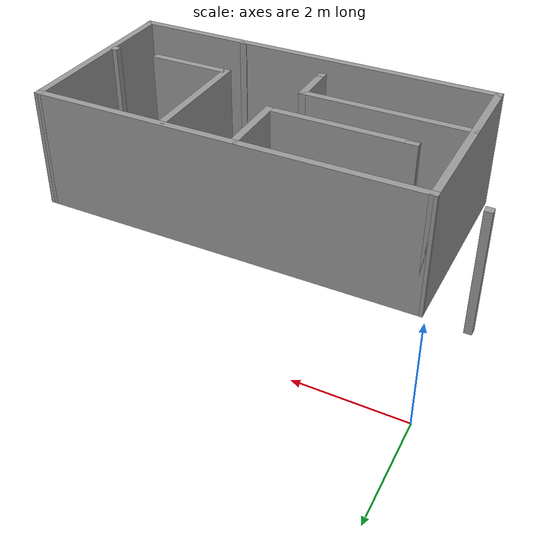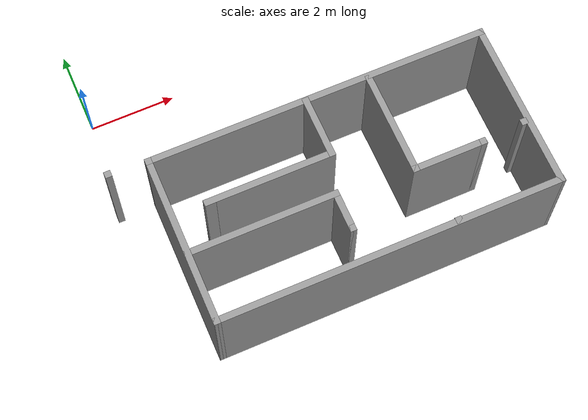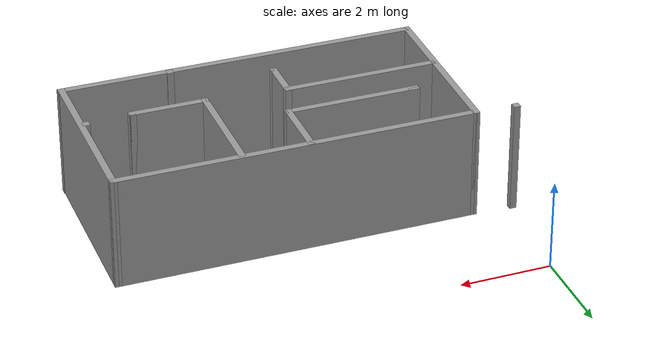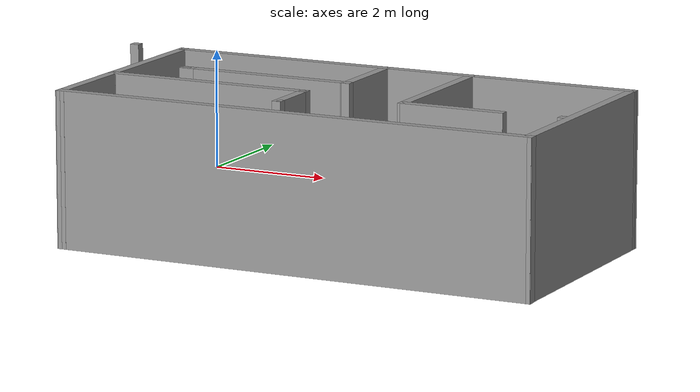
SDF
<?xml version='1.0'?>
<sdf version='1.7'>
  <model name='room2'>
    <pose>4.17819 -3.19268 0 0 -0 0</pose>
    <link name='Wall_11'>
      <collision name='Wall_11_Collision'>
        <geometry>
          <box>
            <size>0.15 0.15 2.5</size>
          </box>
        </geometry>
        <pose>0 0 1.25 0 -0 0</pose>
      </collision>
      <visual name='Wall_11_Visual'>
        <pose>0 0 1.25 0 -0 0</pose>
        <geometry>
          <box>
            <size>0.15 0.15 2.5</size>
          </box>
        </geometry>
        <material>
          <script>
            <uri>file://media/materials/scripts/gazebo.material</uri>
            <name>Gazebo/Grey</name>
          </script>
          <ambient>0 0 0 1</ambient>
        </material>
        <meta>
          <layer>0</layer>
        </meta>
      </visual>
      <pose>1.97181 -3.09732 0 0 -0 0</pose>
    </link>
    <link name='Wall_12'>
      <collision name='Wall_12_Collision'>
        <geometry>
          <box>
            <size>2.5 0.15 2.5</size>
          </box>
        </geometry>
        <pose>0 0 1.25 0 -0 0</pose>
      </collision>
      <visual name='Wall_12_Visual'>
        <pose>0 0 1.25 0 -0 0</pose>
        <geometry>
          <box>
            <size>2.5 0.15 2.5</size>
          </box>
        </geometry>
        <material>
          <script>
            <uri>file://media/materials/scripts/gazebo.material</uri>
            <name>Gazebo/Grey</name>
          </script>
          <ambient>1 1 1 1</ambient>
        </material>
        <meta>
          <layer>0</layer>
        </meta>
      </visual>
      <pose>1.64181 -0.502318 0 0 -0 -1.5708</pose>
    </link>
    <link name='Wall_14'>
      <collision name='Wall_14_Collision'>
        <geometry>
          <box>
            <size>0.15 0.15 2.5</size>
          </box>
        </geometry>
        <pose>0 0 1.25 0 -0 0</pose>
      </collision>
      <visual name='Wall_14_Visual'>
        <pose>0 0 1.25 0 -0 0</pose>
        <geometry>
          <box>
            <size>0.15 0.15 2.5</size>
          </box>
        </geometry>
        <material>
          <script>
            <uri>file://media/materials/scripts/gazebo.material</uri>
            <name>Gazebo/Grey</name>
          </script>
          <ambient>0 0 0 1</ambient>
        </material>
        <meta>
          <layer>0</layer>
        </meta>
      </visual>
      <pose>4.25181 -1.60732 0 0 -0 0</pose>
    </link>
    <link name='Wall_15'>
      <collision name='Wall_15_Collision'>
        <geometry>
          <box>
            <size>0.15 0.15 2.5</size>
          </box>
        </geometry>
        <pose>0 0 1.25 0 -0 0</pose>
      </collision>
      <visual name='Wall_15_Visual'>
        <pose>0 0 1.25 0 -0 0</pose>
        <geometry>
          <box>
            <size>0.15 0.15 2.5</size>
          </box>
        </geometry>
        <material>
          <script>
            <uri>file://media/materials/scripts/gazebo.material</uri>
            <name>Gazebo/Grey</name>
          </script>
          <ambient>0 0 0 1</ambient>
        </material>
        <meta>
          <layer>0</layer>
        </meta>
      </visual>
      <pose>4.25181 -1.60732 0 0 -0 0</pose>
    </link>
    <link name='Wall_16'>
      <collision name='Wall_16_Collision'>
        <geometry>
          <box>
            <size>1.75 0.15 2.5</size>
          </box>
        </geometry>
        <pose>0 0 1.25 0 -0 0</pose>
      </collision>
      <visual name='Wall_16_Visual'>
        <pose>0 0 1.25 0 -0 0</pose>
        <geometry>
          <box>
            <size>1.75 0.15 2.5</size>
          </box>
        </geometry>
        <material>
          <script>
            <uri>file://media/materials/scripts/gazebo.material</uri>
            <name>Gazebo/Grey</name>
          </script>
          <ambient>1 1 1 1</ambient>
        </material>
        <meta>
          <layer>0</layer>
        </meta>
      </visual>
      <pose>2.44181 -1.67732 0 0 -0 0</pose>
    </link>
    <link name='Wall_17'>
      <collision name='Wall_17_Collision'>
        <geometry>
          <box>
            <size>0.15 0.15 2.5</size>
          </box>
        </geometry>
        <pose>0 0 1.25 0 -0 0</pose>
      </collision>
      <visual name='Wall_17_Visual'>
        <pose>0 0 1.25 0 -0 0</pose>
        <geometry>
          <box>
            <size>0.15 0.15 2.5</size>
          </box>
        </geometry>
        <material>
          <script>
            <uri>file://media/materials/scripts/gazebo.material</uri>
            <name>Gazebo/Grey</name>
          </script>
          <ambient>0 0 0 1</ambient>
        </material>
        <meta>
          <layer>0</layer>
        </meta>
      </visual>
      <pose>3.24181 -1.67732 0 0 -0 0</pose>
    </link>
    <link name='Wall_18'>
      <collision name='Wall_18_Collision'>
        <geometry>
          <box>
            <size>1.5 0.15 2.5</size>
          </box>
        </geometry>
        <pose>0 0 1.25 0 -0 0</pose>
      </collision>
      <visual name='Wall_18_Visual'>
        <pose>0 0 1.25 0 -0 0</pose>
        <geometry>
          <box>
            <size>1.5 0.15 2.5</size>
          </box>
        </geometry>
        <material>
          <script>
            <uri>file://media/materials/scripts/gazebo.material</uri>
            <name>Gazebo/Grey</name>
          </script>
          <ambient>1 1 1 1</ambient>
        </material>
        <meta>
          <layer>0</layer>
        </meta>
      </visual>
      <pose>0.161806 0.037682 0 0 -0 -1.5708</pose>
    </link>
    <link name='Wall_19'>
      <collision name='Wall_19_Collision'>
        <geometry>
          <box>
            <size>3 0.15 2.5</size>
          </box>
        </geometry>
        <pose>0 0 1.25 0 -0 0</pose>
      </collision>
      <visual name='Wall_19_Visual'>
        <pose>0 0 1.25 0 -0 0</pose>
        <geometry>
          <box>
            <size>3 0.15 2.5</size>
          </box>
        </geometry>
        <material>
          <script>
            <uri>file://media/materials/scripts/gazebo.material</uri>
            <name>Gazebo/Grey</name>
          </script>
          <ambient>1 1 1 1</ambient>
        </material>
        <meta>
          <layer>0</layer>
        </meta>
      </visual>
      <pose>-1.26319 -0.637318 0 0 -0 3.14159</pose>
    </link>
    <link name='Wall_20'>
      <collision name='Wall_20_Collision'>
        <geometry>
          <box>
            <size>0.25 0.15 2.5</size>
          </box>
        </geometry>
        <pose>0 0 1.25 0 -0 0</pose>
      </collision>
      <visual name='Wall_20_Visual'>
        <pose>0 0 1.25 0 -0 0</pose>
        <geometry>
          <box>
            <size>0.25 0.15 2.5</size>
          </box>
        </geometry>
        <material>
          <script>
            <uri>file://media/materials/scripts/gazebo.material</uri>
            <name>Gazebo/Grey</name>
          </script>
          <ambient>0 0 0 1</ambient>
        </material>
        <meta>
          <layer>0</layer>
        </meta>
      </visual>
      <pose>-2.63819 -0.637318 0 0 -0 0</pose>
    </link>
    <link name='Wall_22'>
      <collision name='Wall_22_Collision'>
        <geometry>
          <box>
            <size>0.15 0.15 2.5</size>
          </box>
        </geometry>
        <pose>0 0 1.25 0 -0 0</pose>
      </collision>
      <visual name='Wall_22_Visual'>
        <pose>0 0 1.25 0 -0 0</pose>
        <geometry>
          <box>
            <size>0.15 0.15 2.5</size>
          </box>
        </geometry>
        <material>
          <script>
            <uri>file://media/materials/scripts/gazebo.material</uri>
            <name>Gazebo/Grey</name>
          </script>
          <ambient>0 0 0 1</ambient>
        </material>
        <meta>
          <layer>0</layer>
        </meta>
      </visual>
      <pose>-0.138194 -1.52732 0 0 -0 0</pose>
    </link>
    <link name='Wall_23'>
      <collision name='Wall_23_Collision'>
        <geometry>
          <box>
            <size>3.5 0.15 2.5</size>
          </box>
        </geometry>
        <pose>0 0 1.25 0 -0 0</pose>
      </collision>
      <visual name='Wall_23_Visual'>
        <pose>0 0 1.25 0 -0 0</pose>
        <geometry>
          <box>
            <size>3.5 0.15 2.5</size>
          </box>
        </geometry>
        <material>
          <script>
            <uri>file://media/materials/scripts/gazebo.material</uri>
            <name>Gazebo/Grey</name>
          </script>
          <ambient>1 1 1 1</ambient>
        </material>
        <meta>
          <layer>0</layer>
        </meta>
      </visual>
      <pose>-1.81319 -1.52732 0 0 -0 3.14159</pose>
    </link>
    <link name='Wall_24'>
      <collision name='Wall_24_Collision'>
        <geometry>
          <box>
            <size>0.15 0.15 2.5</size>
          </box>
        </geometry>
        <pose>0 0 1.25 0 -0 0</pose>
      </collision>
      <visual name='Wall_24_Visual'>
        <pose>0 0 1.25 0 -0 0</pose>
        <geometry>
          <box>
            <size>0.15 0.15 2.5</size>
          </box>
        </geometry>
        <material>
          <script>
            <uri>file://media/materials/scripts/gazebo.material</uri>
            <name>Gazebo/Grey</name>
          </script>
          <ambient>0 0 0 1</ambient>
        </material>
        <meta>
          <layer>0</layer>
        </meta>
      </visual>
      <pose>-3.48819 -1.52732 0 0 -0 0</pose>
    </link>
    <link name='Wall_25'>
      <collision name='Wall_25_Collision'>
        <geometry>
          <box>
            <size>1 0.15 2.5</size>
          </box>
        </geometry>
        <pose>0 0 1.25 0 -0 0</pose>
      </collision>
      <visual name='Wall_25_Visual'>
        <pose>0 0 1.25 0 -0 0</pose>
        <geometry>
          <box>
            <size>1 0.15 2.5</size>
          </box>
        </geometry>
        <material>
          <script>
            <uri>file://media/materials/scripts/gazebo.material</uri>
            <name>Gazebo/Grey</name>
          </script>
          <ambient>1 1 1 1</ambient>
        </material>
        <meta>
          <layer>0</layer>
        </meta>
      </visual>
      <pose>-0.138194 -1.95232 0 0 -0 -1.5708</pose>
    </link>
    <link name='Wall_26'>
      <collision name='Wall_26_Collision'>
        <geometry>
          <box>
            <size>0.15 0.15 2.5</size>
          </box>
        </geometry>
        <pose>0 0 1.25 0 -0 0</pose>
      </collision>
      <visual name='Wall_26_Visual'>
        <pose>0 0 1.25 0 -0 0</pose>
        <geometry>
          <box>
            <size>0.15 0.15 2.5</size>
          </box>
        </geometry>
        <material>
          <script>
            <uri>file://media/materials/scripts/gazebo.material</uri>
            <name>Gazebo/Grey</name>
          </script>
          <ambient>0 0 0 1</ambient>
        </material>
        <meta>
          <layer>0</layer>
        </meta>
      </visual>
      <pose>-0.138194 -2.37732 0 0 -0 0</pose>
    </link>
    <link name='Wall_3'>
      <collision name='Wall_3_Collision'>
        <geometry>
          <box>
            <size>0.15 0.15 2.5</size>
          </box>
        </geometry>
        <pose>0 0 1.25 0 -0 0</pose>
      </collision>
      <visual name='Wall_3_Visual'>
        <pose>0 0 1.25 0 -0 0</pose>
        <geometry>
          <box>
            <size>0.15 0.15 2.5</size>
          </box>
        </geometry>
        <material>
          <script>
            <uri>file://media/materials/scripts/gazebo.material</uri>
            <name>Gazebo/Grey</name>
          </script>
          <ambient>0 0 0 1</ambient>
        </material>
        <meta>
          <layer>0</layer>
        </meta>
      </visual>
      <pose>-4.37219 0.793276 0 0 -0 0</pose>
    </link>
    <link name='Wall_4'>
      <collision name='Wall_4_Collision'>
        <geometry>
          <box>
            <size>8 0.15 2.5</size>
          </box>
        </geometry>
        <pose>0 0 1.25 0 -0 0</pose>
      </collision>
      <visual name='Wall_4_Visual'>
        <pose>0 0 1.25 0 -0 0</pose>
        <geometry>
          <box>
            <size>8 0.15 2.5</size>
          </box>
        </geometry>
        <material>
          <script>
            <uri>file://media/materials/scripts/gazebo.material</uri>
            <name>Gazebo/Grey</name>
          </script>
          <ambient>1 1 1 1</ambient>
        </material>
        <meta>
          <layer>0</layer>
        </meta>
      </visual>
      <pose>0.446806 0.732682 0 0 -0 0</pose>
    </link>
    <link name='Wall_5'>
      <collision name='Wall_5_Collision'>
        <geometry>
          <box>
            <size>4 0.15 2.5</size>
          </box>
        </geometry>
        <pose>0 0 1.25 0 -0 0</pose>
      </collision>
      <visual name='Wall_5_Visual'>
        <pose>0 0 1.25 0 -0 0</pose>
        <geometry>
          <box>
            <size>4 0.15 2.5</size>
          </box>
        </geometry>
        <material>
          <script>
            <uri>file://media/materials/scripts/gazebo.material</uri>
            <name>Gazebo/Grey</name>
          </script>
          <ambient>1 1 1 1</ambient>
        </material>
        <meta>
          <layer>0</layer>
        </meta>
      </visual>
      <pose>4.36181 -1.19232 0 0 -0 -1.57599</pose>
    </link>
    <link name='Wall_6'>
      <collision name='Wall_6_Collision'>
        <geometry>
          <box>
            <size>8 0.15 2.5</size>
          </box>
        </geometry>
        <pose>0 0 1.25 0 -0 0</pose>
      </collision>
      <visual name='Wall_6_Visual'>
        <pose>0 0 1.25 0 -0 0</pose>
        <geometry>
          <box>
            <size>8 0.15 2.5</size>
          </box>
        </geometry>
        <material>
          <script>
            <uri>file://media/materials/scripts/gazebo.material</uri>
            <name>Gazebo/Grey</name>
          </script>
          <ambient>1 1 1 1</ambient>
        </material>
        <meta>
          <layer>0</layer>
        </meta>
      </visual>
      <pose>0.436806 -3.11732 0 0 -0 3.14159</pose>
    </link>
    <link name='Wall_7'>
      <collision name='Wall_7_Collision'>
        <geometry>
          <box>
            <size>4 0.15 2.5</size>
          </box>
        </geometry>
        <pose>0 0 1.25 0 -0 0</pose>
      </collision>
      <visual name='Wall_7_Visual'>
        <pose>0 0 1.25 0 -0 0</pose>
        <geometry>
          <box>
            <size>4 0.15 2.5</size>
          </box>
        </geometry>
        <material>
          <script>
            <uri>file://media/materials/scripts/gazebo.material</uri>
            <name>Gazebo/Grey</name>
          </script>
          <ambient>1 1 1 1</ambient>
        </material>
        <meta>
          <layer>0</layer>
        </meta>
      </visual>
      <pose>-3.48819 -1.19232 0 0 -0 1.5656</pose>
    </link>
    <link name='Wall_8'>
      <collision name='Wall_8_Collision'>
        <geometry>
          <box>
            <size>0.15 0.15 2.5</size>
          </box>
        </geometry>
        <pose>0 0 1.25 0 -0 0</pose>
      </collision>
      <visual name='Wall_8_Visual'>
        <pose>0 0 1.25 0 -0 0</pose>
        <geometry>
          <box>
            <size>0.15 0.15 2.5</size>
          </box>
        </geometry>
        <material>
          <script>
            <uri>file://media/materials/scripts/gazebo.material</uri>
            <name>Gazebo/Grey</name>
          </script>
          <ambient>1 1 1 1</ambient>
        </material>
        <meta>
          <layer>0</layer>
        </meta>
      </visual>
      <pose>-3.47819 0.732682 0 0 -0 0</pose>
    </link>
    <link name='Wall_9'>
      <collision name='Wall_9_Collision'>
        <geometry>
          <box>
            <size>0.15 0.15 2.5</size>
          </box>
        </geometry>
        <pose>0 0 1.25 0 -0 0</pose>
      </collision>
      <visual name='Wall_9_Visual'>
        <pose>0 0 1.25 0 -0 0</pose>
        <geometry>
          <box>
            <size>0.15 0.15 2.5</size>
          </box>
        </geometry>
        <material>
          <script>
            <uri>file://media/materials/scripts/gazebo.material</uri>
            <name>Gazebo/Grey</name>
          </script>
          <ambient>0 0 0 1</ambient>
        </material>
        <meta>
          <layer>0</layer>
        </meta>
      </visual>
      <pose>-3.47819 0.732682 0 0 -0 0</pose>
    </link>
    <static>1</static>
  </model>
</sdf>
